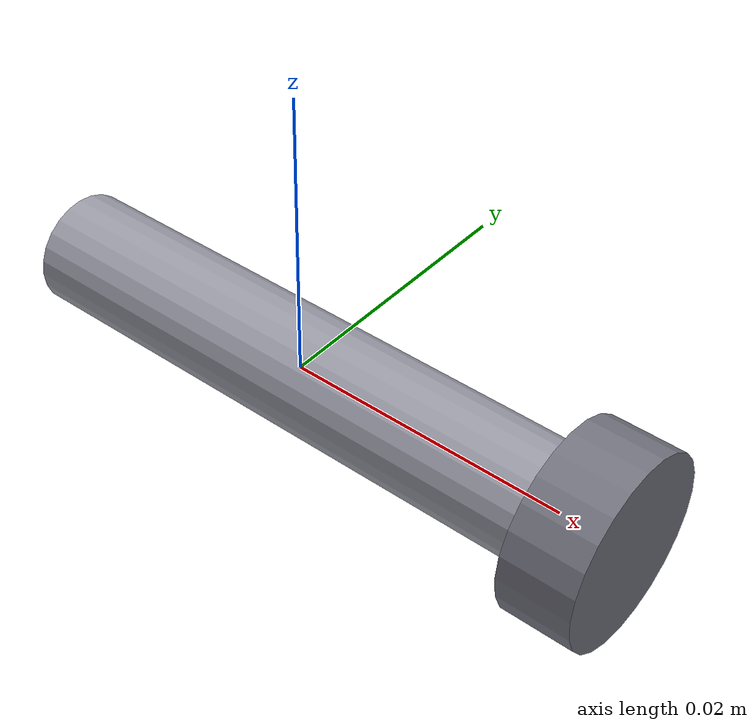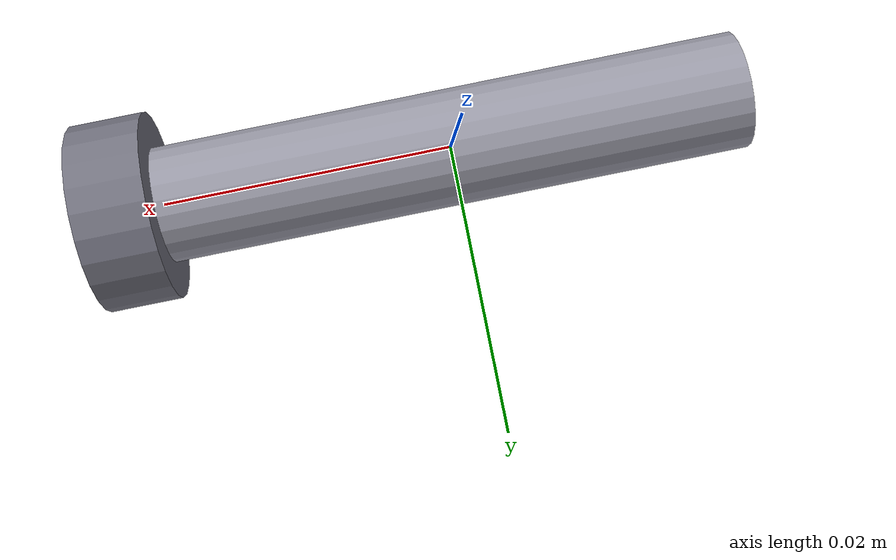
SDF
<?xml version="1.0" ?>
<sdf version="1.8">
  <model name="m8_bolt">
    <link name="bolt">
      <inertial>
        <!-- 강철 M8×40 ≈ 25g. 관성은 길이 45mm 봉 근사. -->
        <mass>0.025</mass>
        <inertia>
          <ixx>2.0e-7</ixx>
          <iyy>4.5e-6</iyy>
          <izz>4.5e-6</izz>
          <ixy>0</ixy>
          <ixz>0</ixz>
          <iyz>0</iyz>
        </inertia>
      </inertial>

      <!-- 샤프트: 원기둥 기본 축(+Z)을 Y로 +90° 회전 → +X 정렬 -->
      <collision name="shaft_collision">
        <pose>0 0 0 0 1.5708 0</pose>
        <geometry>
          <cylinder>
            <radius>0.004</radius>
            <length>0.040</length>
          </cylinder>
        </geometry>
        <surface>
          <friction>
            <ode>
              <mu>0.8</mu>
              <mu2>0.8</mu2>
            </ode>
          </friction>
        </surface>
      </collision>
      <visual name="shaft_visual">
        <pose>0 0 0 0 1.5708 0</pose>
        <geometry>
          <cylinder>
            <radius>0.004</radius>
            <length>0.040</length>
          </cylinder>
        </geometry>
        <material>
          <ambient>0.50 0.50 0.55 1</ambient>
          <diffuse>0.60 0.60 0.65 1</diffuse>
          <specular>0.40 0.40 0.40 1</specular>
        </material>
      </visual>

      <!-- 머리: +X 끝 (샤프트 끝 0.020 + 머리 두께 0.005의 절반) -->
      <collision name="head_collision">
        <pose>0.0225 0 0 0 1.5708 0</pose>
        <geometry>
          <cylinder>
            <radius>0.0065</radius>
            <length>0.005</length>
          </cylinder>
        </geometry>
        <surface>
          <friction>
            <ode>
              <mu>0.8</mu>
              <mu2>0.8</mu2>
            </ode>
          </friction>
        </surface>
      </collision>
      <visual name="head_visual">
        <pose>0.0225 0 0 0 1.5708 0</pose>
        <geometry>
          <cylinder>
            <radius>0.0065</radius>
            <length>0.005</length>
          </cylinder>
        </geometry>
        <material>
          <ambient>0.35 0.35 0.40 1</ambient>
          <diffuse>0.45 0.45 0.50 1</diffuse>
        </material>
      </visual>
    </link>

    <plugin filename="gz-sim-pose-publisher-system"
            name="gz::sim::systems::PosePublisher">
      <publish_link_pose>false</publish_link_pose>
      <publish_visual_pose>false</publish_visual_pose>
      <publish_collision_pose>false</publish_collision_pose>
      <publish_sensor_pose>false</publish_sensor_pose>
      <publish_model_pose>true</publish_model_pose>
      <publish_nested_model_pose>false</publish_nested_model_pose>
      <use_pose_vector_msg>true</use_pose_vector_msg>
      <static_publisher>false</static_publisher>
      <update_frequency>30</update_frequency>
    </plugin>
  </model>
</sdf>
